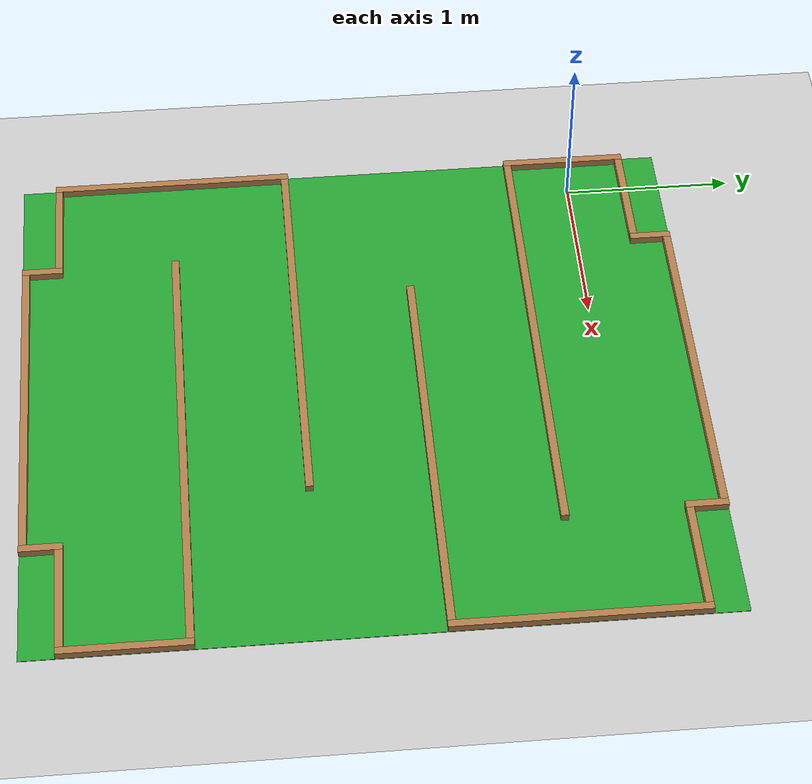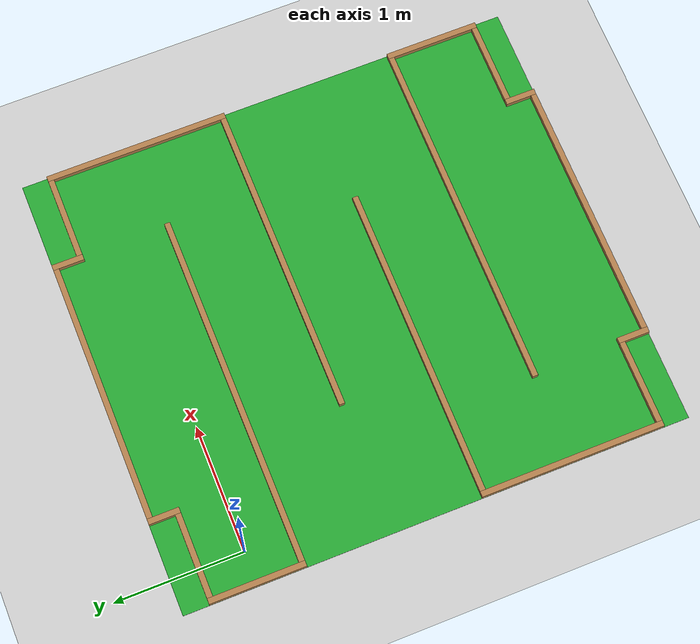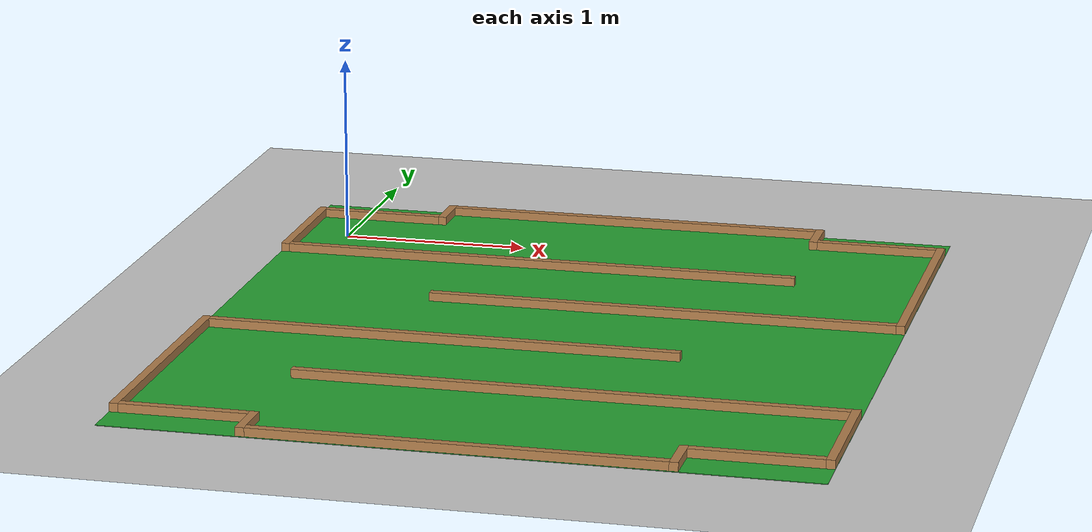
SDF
<?xml version="1.0"?>
<sdf version="1.6">
    <world name="petitcon22">

        <include>
            <uri>model://ground_plane</uri>
        </include>

        <include>
            <uri>model://sun</uri>
        </include>

        <scene>
            <shadows>false</shadows>
        </scene>

        <gui fullscreen='0'>
            <camera name='user_camera'>
                <pose frame=''>0.319654 -0.235002 9.29441 0 1.5138 0.009599</pose>
                <view_controller>orbit</view_controller>
                <projection_type>perspective</projection_type>
            </camera>
        </gui>

        <physics type='ode'>
            <real_time_update_rate>1000.0</real_time_update_rate>
            <max_step_size>0.001</max_step_size>
            <real_time_factor>1</real_time_factor>
            <ode>
                <solver>
                    <type>quick</type>
                    <iters>150</iters>
                    <precon_iters>0</precon_iters>
                    <sor>1.400000</sor>
                    <use_dynamic_moi_rescaling>1</use_dynamic_moi_rescaling>
                </solver>
                <constraints>
                    <cfm>0.00001</cfm>
                    <erp>0.2</erp>
                    <contact_max_correcting_vel>2000.000000</contact_max_correcting_vel>
                    <contact_surface_layer>0.01000</contact_surface_layer>
                </constraints>
            </ode>
        </physics>

        <model name='petitcon22_world'>
            <static>1</static>
            <pose>1.5025 -1.4 0.001 0 0 0</pose>
            <link name='ground'>
                <collision name='collision'>
                    <geometry>
                        <plane>
                            <normal>0 0 1</normal>
                            <size>3.545 3.945</size>
                        </plane>
                    </geometry>
                </collision>
                <visual name='visual'>
                    <geometry>
                        <plane>
                            <normal>0 0 1</normal>
                            <size>3.545 3.945</size>
                        </plane>
                    </geometry>
                    <material>
                        <script>
                            <name>Gazebo/Green</name>
                            <uri>file://media/materials/scripts/gazebo.material</uri>
                        </script>
                    </material>
                </visual>
            </link>

            <link name='white_lines'>
                <pose>0 0 0.001 0 0 0</pose>
                <visual name='visual_hline1'>
                    <pose>-0.15875 1.4 0 0 0 0</pose>
                    <geometry>
                        <plane>
                            <normal>0 0 1</normal>
                            <size>3.1175 0.038</size>
                        </plane>
                    </geometry>
                    <material>
                        <script>
                            <name>Gazebo/White</name>
                            <uri>file://media/materials/scripts/gazebo.material</uri>
                        </script>
                    </material>
                </visual>
                <visual name='visual_hline2'>
                    <pose>0.16375 0.7 0 0 0 0</pose>
                    <geometry>
                        <plane>
                            <normal>0 0 1</normal>
                            <size>2.472 0.038</size>
                        </plane>
                    </geometry>
                    <material>
                        <script>
                            <name>Gazebo/White</name>
                            <uri>file://media/materials/scripts/gazebo.material</uri>
                        </script>
                    </material>
                </visual>
                <visual name='visual_hline3'>
                    <pose>0 0 0 0 0 0</pose>
                    <geometry>
                        <plane>
                            <normal>0 0 1</normal>
                            <size>2.145 0.038</size>
                        </plane>
                    </geometry>
                    <material>
                        <script>
                            <name>Gazebo/White</name>
                            <uri>file://media/materials/scripts/gazebo.material</uri>
                        </script>
                    </material>
                </visual>
                <visual name='visual_hline4'>
                    <pose>-0.16375 -0.7 0 0 0 0</pose>
                    <geometry>
                        <plane>
                            <normal>0 0 1</normal>
                            <size>2.472 0.038</size>
                        </plane>
                    </geometry>
                    <material>
                        <script>
                            <name>Gazebo/White</name>
                            <uri>file://media/materials/scripts/gazebo.material</uri>
                        </script>
                    </material>
                </visual>
                <visual name='visual_hline5'>
                    <pose>0.15875 -1.4 0 0 0 0</pose>
                    <geometry>
                        <plane>
                            <normal>0 0 1</normal>
                            <size>3.1175 0.038</size>
                        </plane>
                    </geometry>
                    <material>
                        <script>
                            <name>Gazebo/White</name>
                            <uri>file://media/materials/scripts/gazebo.material</uri>
                        </script>
                    </material>
                </visual>
                <visual name='visual_vline1'>
                    <pose>1.4 1.05 0 0 0 0</pose>
                    <geometry>
                        <plane>
                            <normal>0 0 1</normal>
                            <size>0.038 0.7</size>
                        </plane>
                    </geometry>
                    <material>
                        <script>
                            <name>Gazebo/White</name>
                            <uri>file://media/materials/scripts/gazebo.material</uri>
                        </script>
                    </material>
                </visual>
                <visual name='visual_vline2'>
                    <pose>-1.0725 0.35 0 0 0 0</pose>
                    <geometry>
                        <plane>
                            <normal>0 0 1</normal>
                            <size>0.038 0.7</size>
                        </plane>
                    </geometry>
                    <material>
                        <script>
                            <name>Gazebo/White</name>
                            <uri>file://media/materials/scripts/gazebo.material</uri>
                        </script>
                    </material>
                </visual>
                <visual name='visual_vline3'>
                    <pose>1.0725 -0.35 0 0 0 0</pose>
                    <geometry>
                        <plane>
                            <normal>0 0 1</normal>
                            <size>0.038 0.7</size>
                        </plane>
                    </geometry>
                    <material>
                        <script>
                            <name>Gazebo/White</name>
                            <uri>file://media/materials/scripts/gazebo.material</uri>
                        </script>
                    </material>
                </visual>
                <visual name='visual_vline4'>
                    <pose>-1.4 -1.05 0 0 0 0</pose>
                    <geometry>
                        <plane>
                            <normal>0 0 1</normal>
                            <size>0.038 0.7</size>
                        </plane>
                    </geometry>
                    <material>
                        <script>
                            <name>Gazebo/White</name>
                            <uri>file://media/materials/scripts/gazebo.material</uri>
                        </script>
                    </material>
                </visual>
                <visual name='visual_goal_1'>
                    <pose>-1.5025 1.625 0 0 0 0</pose>
                    <geometry>
                        <plane>
                            <normal>0 0 1</normal>
                            <size>0.45 0.038</size>
                        </plane>
                    </geometry>
                    <material>
                        <script>
                            <name>Gazebo/White</name>
                            <uri>file://media/materials/scripts/gazebo.material</uri>
                        </script>
                    </material>
                </visual>
                <visual name='visual_goal_2'>
                    <pose>-1.5025 1.175 0 0 0 0</pose>
                    <geometry>
                        <plane>
                            <normal>0 0 1</normal>
                            <size>0.45 0.038</size>
                        </plane>
                    </geometry>
                    <material>
                        <script>
                            <name>Gazebo/White</name>
                            <uri>file://media/materials/scripts/gazebo.material</uri>
                        </script>
                    </material>
                </visual>
                <visual name='visual_goal_3'>
                    <pose>-1.7275 1.4 0 0 0 0</pose>
                    <geometry>
                        <plane>
                            <normal>0 0 1</normal>
                            <size>0.038 0.45</size>
                        </plane>
                    </geometry>
                    <material>
                        <script>
                            <name>Gazebo/White</name>
                            <uri>file://media/materials/scripts/gazebo.material</uri>
                        </script>
                    </material>
                </visual>
                <visual name='visual_goal_4'>
                    <pose>-1.5025 1.4 0 0 0 0</pose>
                    <geometry>
                        <plane>
                            <normal>0 0 1</normal>
                            <size>0.038 0.45</size>
                        </plane>
                    </geometry>
                    <material>
                        <script>
                            <name>Gazebo/White</name>
                            <uri>file://media/materials/scripts/gazebo.material</uri>
                        </script>
                    </material>
                </visual>
                <visual name='visual_goal_5'>
                    <pose>-1.2775 1.4 0 0 0 0</pose>
                    <geometry>
                        <plane>
                            <normal>0 0 1</normal>
                            <size>0.038 0.45</size>
                        </plane>
                    </geometry>
                    <material>
                        <script>
                            <name>Gazebo/White</name>
                            <uri>file://media/materials/scripts/gazebo.material</uri>
                        </script>
                    </material>
                </visual>
                <visual name='visual_start_1'>
                    <pose>1.5025 -1.625 0 0 0 0</pose>
                    <geometry>
                        <plane>
                            <normal>0 0 1</normal>
                            <size>0.45 0.038</size>
                        </plane>
                    </geometry>
                    <material>
                        <script>
                            <name>Gazebo/White</name>
                            <uri>file://media/materials/scripts/gazebo.material</uri>
                        </script>
                    </material>
                </visual>
                <visual name='visual_start_2'>
                    <pose>1.5025 -1.175 0 0 0 0</pose>
                    <geometry>
                        <plane>
                            <normal>0 0 1</normal>
                            <size>0.45 0.038</size>
                        </plane>
                    </geometry>
                    <material>
                        <script>
                            <name>Gazebo/White</name>
                            <uri>file://media/materials/scripts/gazebo.material</uri>
                        </script>
                    </material>
                </visual>
                <visual name='visual_start_3'>
                    <pose>1.7275 -1.4 0 0 0 0</pose>
                    <geometry>
                        <plane>
                            <normal>0 0 1</normal>
                            <size>0.038 0.45</size>
                        </plane>
                    </geometry>
                    <material>
                        <script>
                            <name>Gazebo/White</name>
                            <uri>file://media/materials/scripts/gazebo.material</uri>
                        </script>
                    </material>
                </visual>
                <visual name='visual_start_4'>
                    <pose>1.5025 -1.4 0 0 0 0</pose>
                    <geometry>
                        <plane>
                            <normal>0 0 1</normal>
                            <size>0.038 0.45</size>
                        </plane>
                    </geometry>
                    <material>
                        <script>
                            <name>Gazebo/White</name>
                            <uri>file://media/materials/scripts/gazebo.material</uri>
                        </script>
                    </material>
                </visual>
                <visual name='visual_start_5'>
                    <pose>1.2775 -1.4 0 0 0 0</pose>
                    <geometry>
                        <plane>
                            <normal>0 0 1</normal>
                            <size>0.038 0.45</size>
                        </plane>
                    </geometry>
                    <material>
                        <script>
                            <name>Gazebo/White</name>
                            <uri>file://media/materials/scripts/gazebo.material</uri>
                        </script>
                    </material>
                </visual>
            </link>

            <link name='fences'>
                <pose>0 0 0.025 0 0 0</pose>
                <visual name='visual_fence_g1'>
                    <pose>0.49125 0.35 0 0 0 0</pose>
                    <geometry>
                        <box>
                            <size>2.4725 0.045 0.045 0 0 0</size>
                        </box>
                    </geometry>
                    <material>
                        <script>
                            <name>Gazebo/Wood</name>
                            <uri>file://media/materials/scripts/gazebo.material</uri>
                        </script>
                    </material>
                </visual>
                <visual name='visual_fence_g2'>
                    <pose>1.75 1.05 0 0 0 0</pose>
                    <geometry>
                        <box>
                            <size>0.045 1.445 0.045 0 0 0</size>
                        </box>
                    </geometry>
                    <material>
                        <script>
                            <name>Gazebo/Wood</name>
                            <uri>file://media/materials/scripts/gazebo.material</uri>
                        </script>
                    </material>
                </visual>
                <visual name='visual_fence_g3'>
                    <pose>1.4 1.75 0 0 0 0</pose>
                    <geometry>
                        <box>
                            <size>0.655 0.045 0.045 0 0 0</size>
                        </box>
                    </geometry>
                    <material>
                        <script>
                            <name>Gazebo/Wood</name>
                            <uri>file://media/materials/scripts/gazebo.material</uri>
                        </script>
                    </material>
                </visual>
                <visual name='visual_fence_g4'>
                    <pose>1.05 1.85 0 0 0 0</pose>
                    <geometry>
                        <box>
                            <size>0.045 0.245 0.045 0 0 0</size>
                        </box>
                    </geometry>
                    <material>
                        <script>
                            <name>Gazebo/Wood</name>
                            <uri>file://media/materials/scripts/gazebo.material</uri>
                        </script>
                    </material>
                </visual>
                <visual name='visual_fence_g5'>
                    <pose>0 1.95 0 0 0 0</pose>
                    <geometry>
                        <box>
                            <size>2.055 0.045 0.045 0 0 0</size>
                        </box>
                    </geometry>
                    <material>
                        <script>
                            <name>Gazebo/Wood</name>
                            <uri>file://media/materials/scripts/gazebo.material</uri>
                        </script>
                    </material>
                </visual>
                <visual name='visual_fence_g6'>
                    <pose>-1.05 1.85 0 0 0 0</pose>
                    <geometry>
                        <box>
                            <size>0.045 0.245 0.045 0 0 0</size>
                        </box>
                    </geometry>
                    <material>
                        <script>
                            <name>Gazebo/Wood</name>
                            <uri>file://media/materials/scripts/gazebo.material</uri>
                        </script>
                    </material>
                </visual>
                <visual name='visual_fence_g7'>
                    <pose>-1.4 1.75 0 0 0 0</pose>
                    <geometry>
                        <box>
                            <size>0.655 0.045 0.045 0 0 0</size>
                        </box>
                    </geometry>
                    <material>
                        <script>
                            <name>Gazebo/Wood</name>
                            <uri>file://media/materials/scripts/gazebo.material</uri>
                        </script>
                    </material>
                </visual>
                <visual name='visual_fence_g8'>
                    <pose>-1.75 1.4 0 0 0 0</pose>
                    <geometry>
                        <box>
                            <size>0.045 0.745 0.045 0 0 0</size>
                        </box>
                    </geometry>
                    <material>
                        <script>
                            <name>Gazebo/Wood</name>
                            <uri>file://media/materials/scripts/gazebo.material</uri>
                        </script>
                    </material>
                </visual>
                <visual name='visual_fence_g9'>
                    <pose>-0.3275 1.05 0 0 0 0</pose>
                    <geometry>
                        <box>
                            <size>2.8 0.045 0.045 0 0 0</size>
                        </box>
                    </geometry>
                    <material>
                        <script>
                            <name>Gazebo/Wood</name>
                            <uri>file://media/materials/scripts/gazebo.material</uri>
                        </script>
                    </material>
                </visual>

                <visual name='visual_fence_s1'>
                    <pose>-0.49125 -0.35 0 0 0 0</pose>
                    <geometry>
                        <box>
                            <size>2.4725 0.045 0.045 0 0 0</size>
                        </box>
                    </geometry>
                    <material>
                        <script>
                            <name>Gazebo/Wood</name>
                            <uri>file://media/materials/scripts/gazebo.material</uri>
                        </script>
                    </material>
                </visual>
                <visual name='visual_fence_s2'>
                    <pose>-1.75 -1.05 0 0 0 0</pose>
                    <geometry>
                        <box>
                            <size>0.045 1.445 0.045 0 0 0</size>
                        </box>
                    </geometry>
                    <material>
                        <script>
                            <name>Gazebo/Wood</name>
                            <uri>file://media/materials/scripts/gazebo.material</uri>
                        </script>
                    </material>
                </visual>
                <visual name='visual_fence_s3'>
                    <pose>-1.4 -1.75 0 0 0 0</pose>
                    <geometry>
                        <box>
                            <size>0.655 0.045 0.045 0 0 0</size>
                        </box>
                    </geometry>
                    <material>
                        <script>
                            <name>Gazebo/Wood</name>
                            <uri>file://media/materials/scripts/gazebo.material</uri>
                        </script>
                    </material>
                </visual>
                <visual name='visual_fence_s4'>
                    <pose>-1.05 -1.85 0 0 0 0</pose>
                    <geometry>
                        <box>
                            <size>0.045 0.245 0.045 0 0 0</size>
                        </box>
                    </geometry>
                    <material>
                        <script>
                            <name>Gazebo/Wood</name>
                            <uri>file://media/materials/scripts/gazebo.material</uri>
                        </script>
                    </material>
                </visual>
                <visual name='visual_fence_s5'>
                    <pose>0 -1.95 0 0 0 0</pose>
                    <geometry>
                        <box>
                            <size>2.055 0.045 0.045 0 0 0</size>
                        </box>
                    </geometry>
                    <material>
                        <script>
                            <name>Gazebo/Wood</name>
                            <uri>file://media/materials/scripts/gazebo.material</uri>
                        </script>
                    </material>
                </visual>
                <visual name='visual_fence_s6'>
                    <pose>1.05 -1.85 0 0 0 0</pose>
                    <geometry>
                        <box>
                            <size>0.045 0.245 0.045 0 0 0</size>
                        </box>
                    </geometry>
                    <material>
                        <script>
                            <name>Gazebo/Wood</name>
                            <uri>file://media/materials/scripts/gazebo.material</uri>
                        </script>
                    </material>
                </visual>
                <visual name='visual_fence_s7'>
                    <pose>1.4 -1.75 0 0 0 0</pose>
                    <geometry>
                        <box>
                            <size>0.655 0.045 0.045 0 0 0</size>
                        </box>
                    </geometry>
                    <material>
                        <script>
                            <name>Gazebo/Wood</name>
                            <uri>file://media/materials/scripts/gazebo.material</uri>
                        </script>
                    </material>
                </visual>
                <visual name='visual_fence_s8'>
                    <pose>1.75 -1.4 0 0 0 0</pose>
                    <geometry>
                        <box>
                            <size>0.045 0.745 0.045 0 0 0</size>
                        </box>
                    </geometry>
                    <material>
                        <script>
                            <name>Gazebo/Wood</name>
                            <uri>file://media/materials/scripts/gazebo.material</uri>
                        </script>
                    </material>
                </visual>
                <visual name='visual_fence_s9'>
                    <pose>0.3275 -1.05 0 0 0 0</pose>
                    <geometry>
                        <box>
                            <size>2.8 0.045 0.045 0 0 0</size>
                        </box>
                    </geometry>
                    <material>
                        <script>
                            <name>Gazebo/Wood</name>
                            <uri>file://media/materials/scripts/gazebo.material</uri>
                        </script>
                    </material>
                </visual>
                <collision name='collision_fence_g1'>
                    <pose>0.49125 0.35 0 0 0 0</pose>
                    <geometry>
                        <box>
                            <size>2.4725 0.045 0.045 0 0 0</size>
                        </box>
                    </geometry>
                </collision>
                <collision name='collision_fence_g2'>
                    <pose>1.75 1.05 0 0 0 0</pose>
                    <geometry>
                        <box>
                            <size>0.045 1.445 0.045 0 0 0</size>
                        </box>
                    </geometry>
                </collision>
                <collision name='collision_fence_g3'>
                    <pose>1.4 1.75 0 0 0 0</pose>
                    <geometry>
                        <box>
                            <size>0.655 0.045 0.045 0 0 0</size>
                        </box>
                    </geometry>
                </collision>
                <collision name='collision_fence_g4'>
                    <pose>1.05 1.85 0 0 0 0</pose>
                    <geometry>
                        <box>
                            <size>0.045 0.245 0.045 0 0 0</size>
                        </box>
                    </geometry>
                </collision>
                <collision name='collision_fence_g5'>
                    <pose>0 1.95 0 0 0 0</pose>
                    <geometry>
                        <box>
                            <size>2.055 0.045 0.045 0 0 0</size>
                        </box>
                    </geometry>
                </collision>
                <collision name='collision_fence_g6'>
                    <pose>-1.05 1.85 0 0 0 0</pose>
                    <geometry>
                        <box>
                            <size>0.045 0.245 0.045 0 0 0</size>
                        </box>
                    </geometry>
                </collision>
                <collision name='collision_fence_g7'>
                    <pose>-1.4 1.75 0 0 0 0</pose>
                    <geometry>
                        <box>
                            <size>0.655 0.045 0.045 0 0 0</size>
                        </box>
                    </geometry>
                </collision>
                <collision name='collision_fence_g8'>
                    <pose>-1.75 1.4 0 0 0 0</pose>
                    <geometry>
                        <box>
                            <size>0.045 0.745 0.045 0 0 0</size>
                        </box>
                    </geometry>
                </collision>
                <collision name='collision_fence_g9'>
                    <pose>-0.3275 1.05 0 0 0 0</pose>
                    <geometry>
                        <box>
                            <size>2.8 0.045 0.045 0 0 0</size>
                        </box>
                    </geometry>
                </collision>
                <collision name='collision_fence_s1'>
                    <pose>-0.49125 -0.35 0 0 0 0</pose>
                    <geometry>
                        <box>
                            <size>2.4725 0.045 0.045 0 0 0</size>
                        </box>
                    </geometry>
                </collision>
                <collision name='collision_fence_s2'>
                    <pose>-1.75 -1.05 0 0 0 0</pose>
                    <geometry>
                        <box>
                            <size>0.045 1.445 0.045 0 0 0</size>
                        </box>
                    </geometry>
                </collision>
                <collision name='collision_fence_s3'>
                    <pose>-1.4 -1.75 0 0 0 0</pose>
                    <geometry>
                        <box>
                            <size>0.655 0.045 0.045 0 0 0</size>
                        </box>
                    </geometry>
                </collision>
                <collision name='collision_fence_s4'>
                    <pose>-1.05 -1.85 0 0 0 0</pose>
                    <geometry>
                        <box>
                            <size>0.045 0.245 0.045 0 0 0</size>
                        </box>
                    </geometry>
                </collision>
                <collision name='collision_fence_s5'>
                    <pose>0 -1.95 0 0 0 0</pose>
                    <geometry>
                        <box>
                            <size>2.055 0.045 0.045 0 0 0</size>
                        </box>
                    </geometry>
                </collision>
                <collision name='collision_fence_s6'>
                    <pose>1.05 -1.85 0 0 0 0</pose>
                    <geometry>
                        <box>
                            <size>0.045 0.245 0.045 0 0 0</size>
                        </box>
                    </geometry>
                </collision>
                <collision name='collision_fence_s7'>
                    <pose>1.4 -1.75 0 0 0 0</pose>
                    <geometry>
                        <box>
                            <size>0.655 0.045 0.045 0 0 0</size>
                        </box>
                    </geometry>
                </collision>
                <collision name='collision_fence_s8'>
                    <pose>1.75 -1.4 0 0 0 0</pose>
                    <geometry>
                        <box>
                            <size>0.045 0.745 0.045 0 0 0</size>
                        </box>
                    </geometry>
                </collision>
                <collision name='collision_fence_s9'>
                    <pose>0.3275 -1.05 0 0 0 0</pose>
                    <geometry>
                        <box>
                            <size>2.8 0.045 0.045 0 0 0</size>
                        </box>
                    </geometry>
                </collision>
            </link>
        </model>
    </world>
</sdf>
